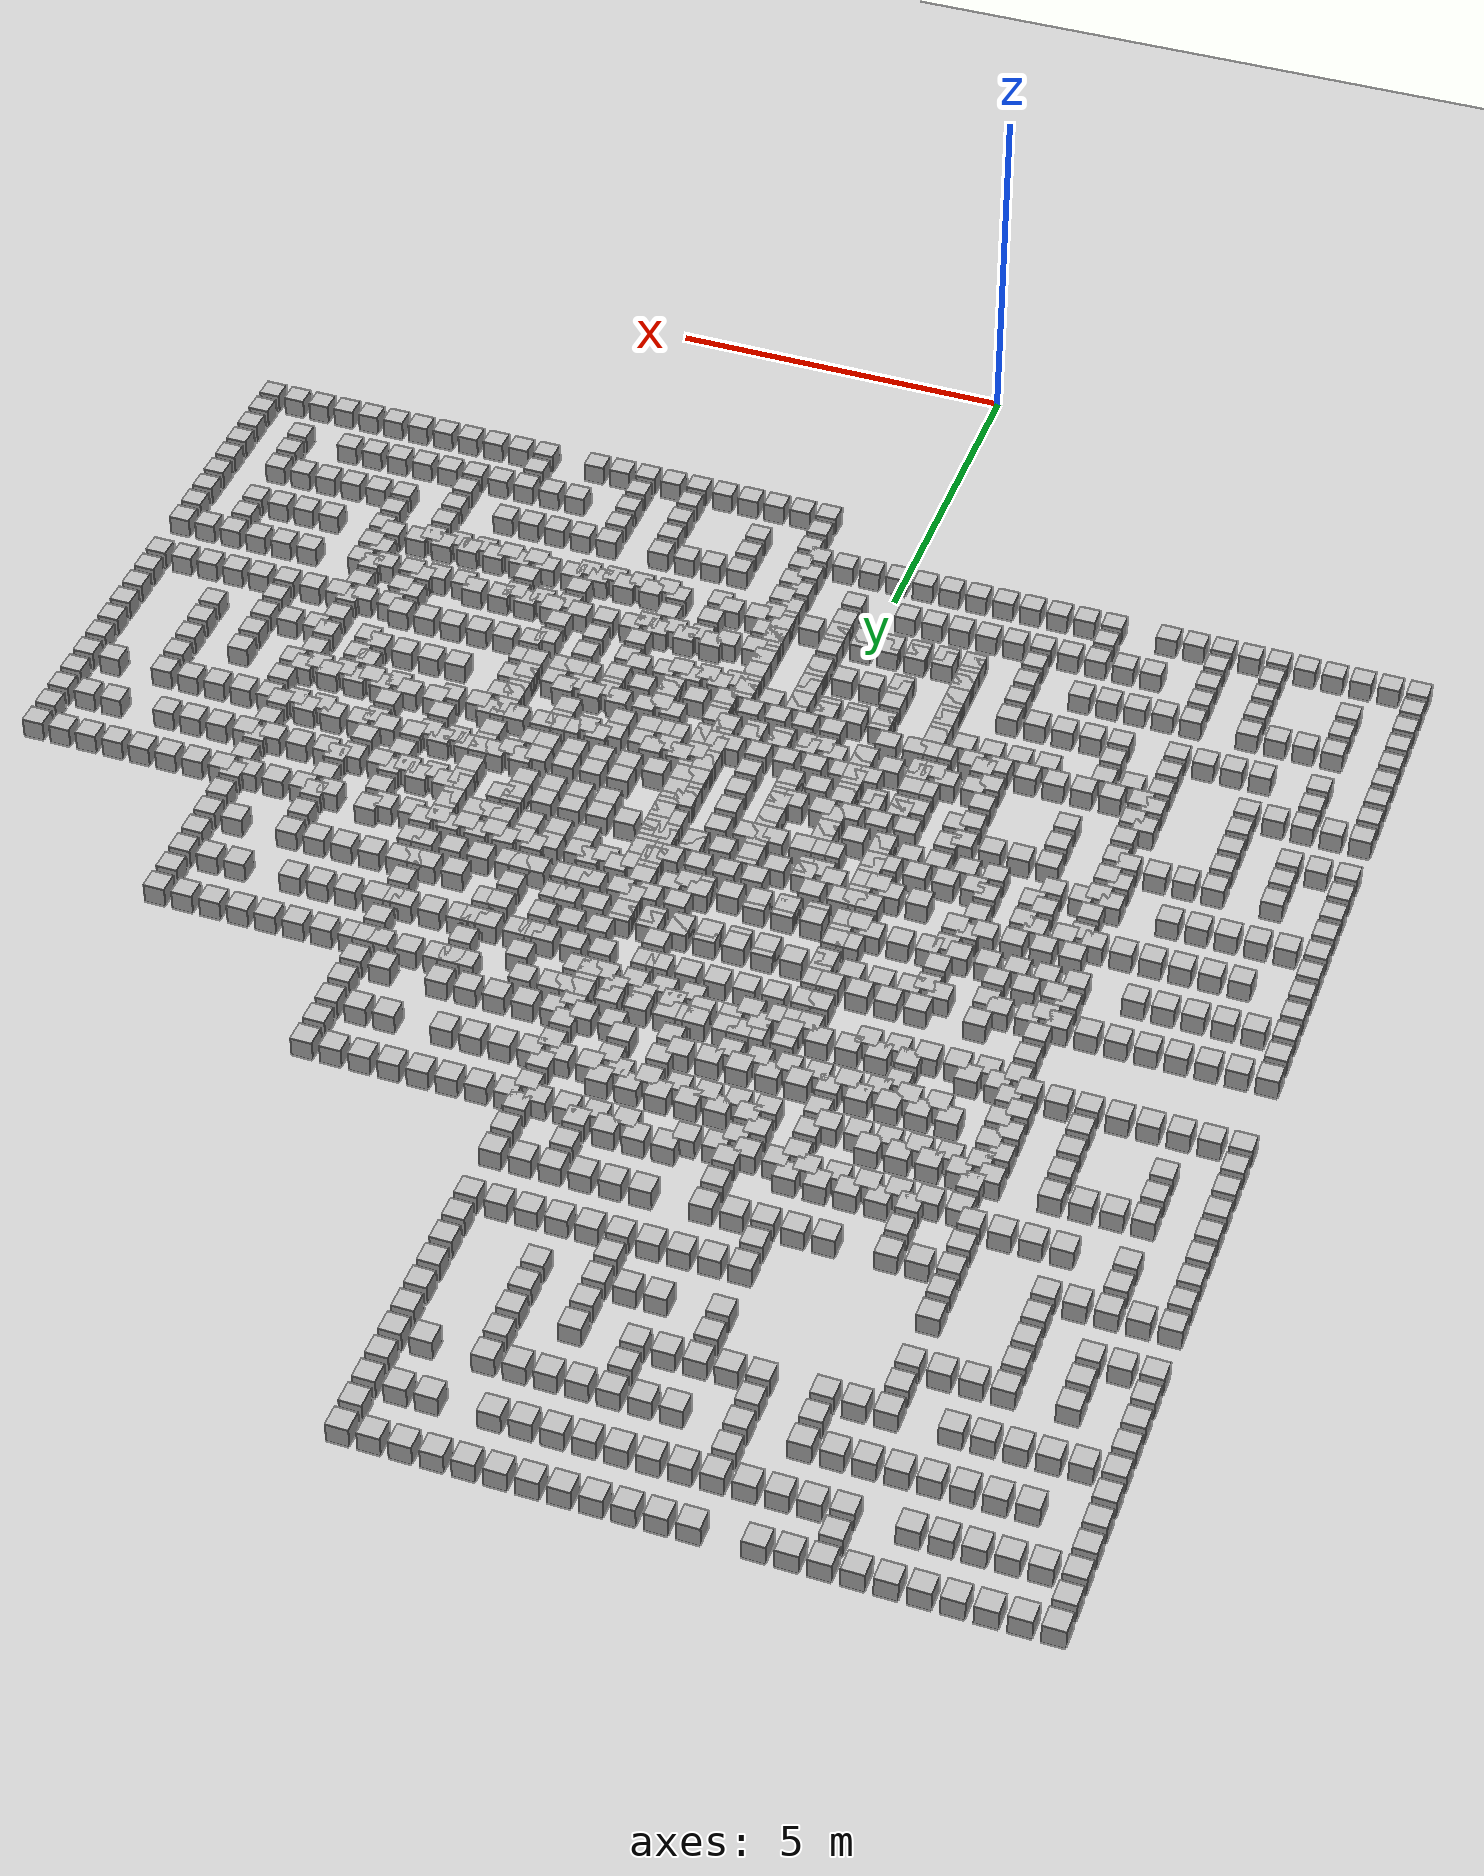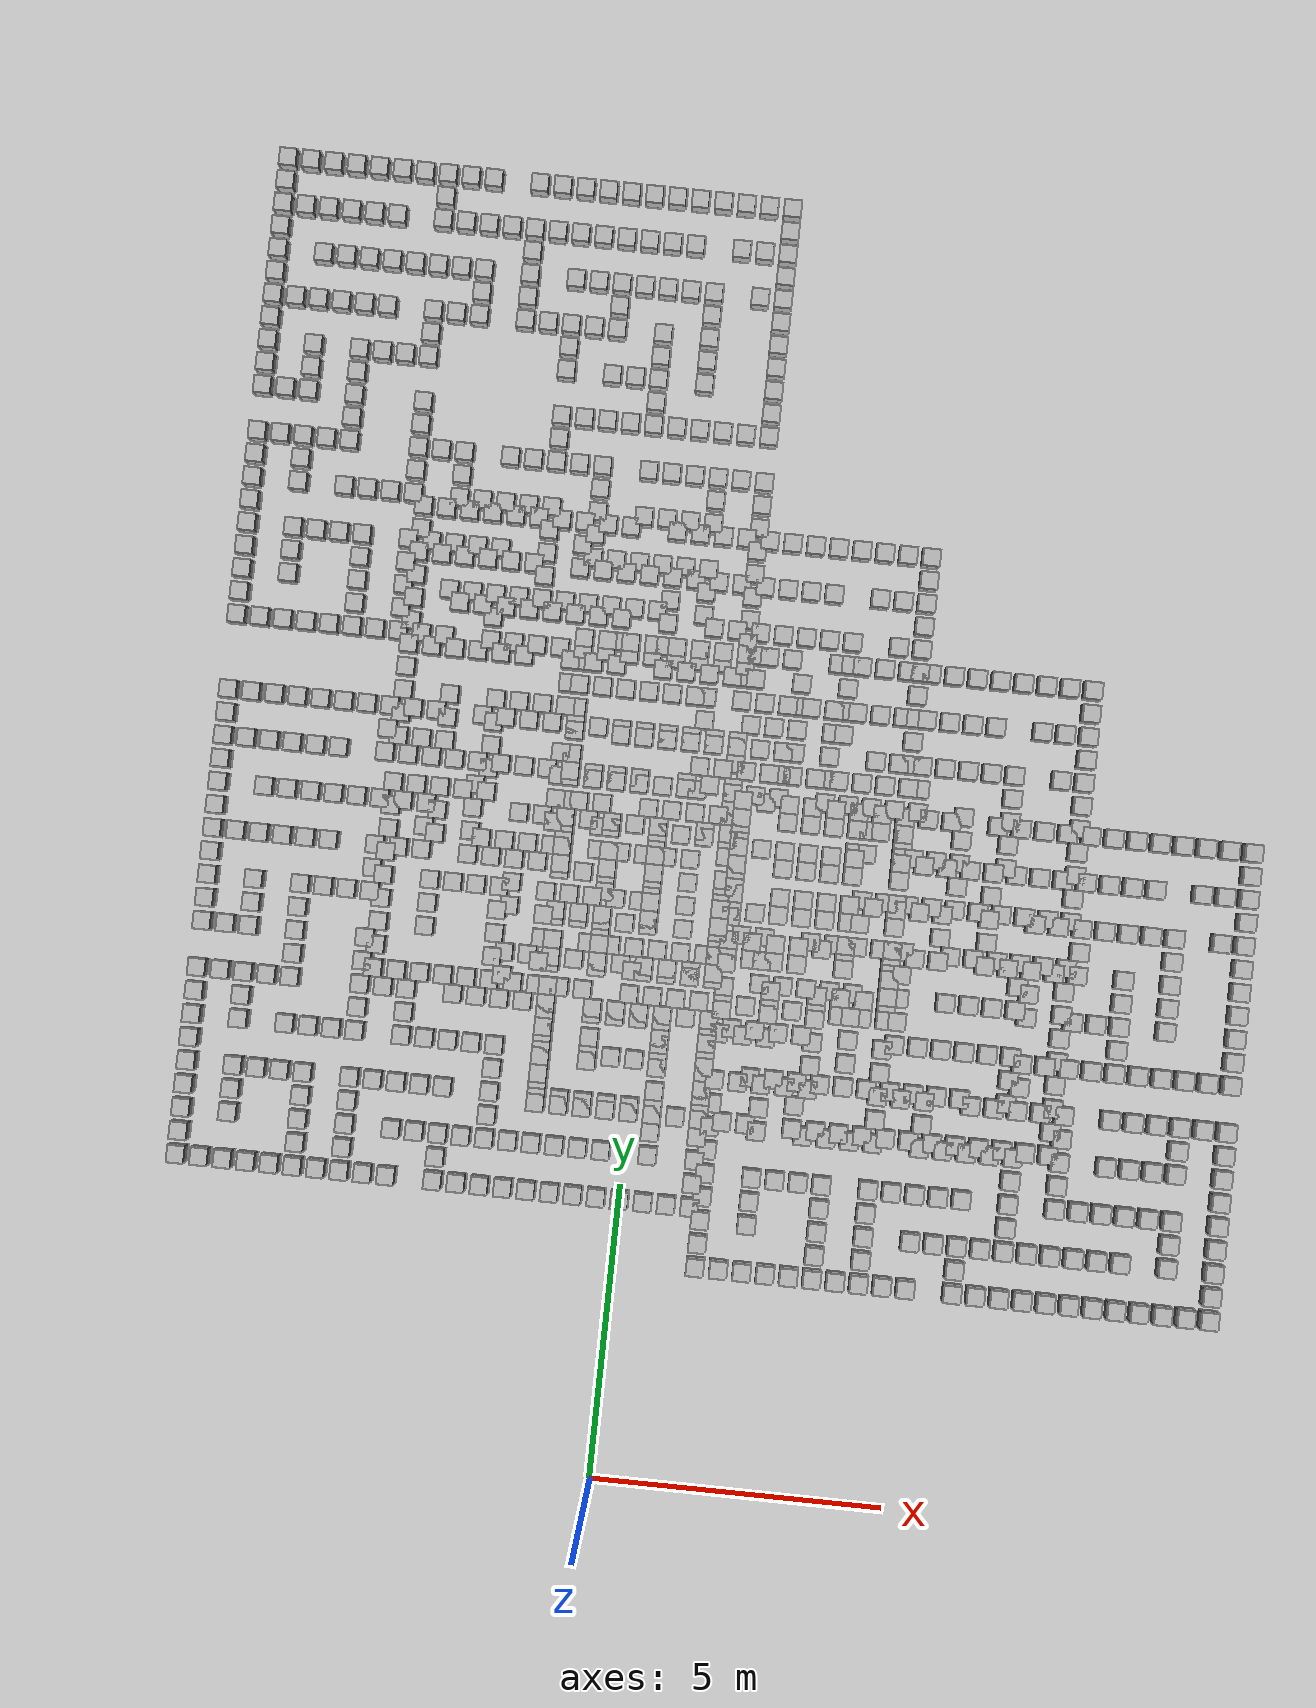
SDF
<?xml version="1.0" ?>
    <sdf version="1.6">
    <world name="default">
        <include>
        <uri>model://ground_plane</uri>
        </include>
        <include>
        <uri>model://sun</uri>
        </include>

        <include>
        <uri>model://cube</uri>
        <name>cube_1</name>
        <pose>-4.6000000000000005 -4.2 0 0 0 0</pose>
        </include>

        <include>
        <uri>model://cube</uri>
        <name>cube_2</name>
        <pose>-4.6000000000000005 -3.8000000000000003 0 0 0 0</pose>
        </include>

        <include>
        <uri>model://cube</uri>
        <name>cube_3</name>
        <pose>-4.6000000000000005 -3.4000000000000004 0 0 0 0</pose>
        </include>

        <include>
        <uri>model://cube</uri>
        <name>cube_4</name>
        <pose>-4.6000000000000005 -3.0 0 0 0 0</pose>
        </include>

        <include>
        <uri>model://cube</uri>
        <name>cube_5</name>
        <pose>-4.6000000000000005 -2.6 0 0 0 0</pose>
        </include>

        <include>
        <uri>model://cube</uri>
        <name>cube_6</name>
        <pose>-4.6000000000000005 -2.2 0 0 0 0</pose>
        </include>

        <include>
        <uri>model://cube</uri>
        <name>cube_7</name>
        <pose>-4.6000000000000005 -1.8 0 0 0 0</pose>
        </include>

        <include>
        <uri>model://cube</uri>
        <name>cube_8</name>
        <pose>-4.6000000000000005 -1.4000000000000001 0 0 0 0</pose>
        </include>

        <include>
        <uri>model://cube</uri>
        <name>cube_9</name>
        <pose>-4.6000000000000005 -1.0 0 0 0 0</pose>
        </include>

        <include>
        <uri>model://cube</uri>
        <name>cube_10</name>
        <pose>-4.6000000000000005 -0.2 0 0 0 0</pose>
        </include>

        <include>
        <uri>model://cube</uri>
        <name>cube_11</name>
        <pose>-4.6000000000000005 0.2 0 0 0 0</pose>
        </include>

        <include>
        <uri>model://cube</uri>
        <name>cube_12</name>
        <pose>-4.6000000000000005 0.6000000000000001 0 0 0 0</pose>
        </include>

        <include>
        <uri>model://cube</uri>
        <name>cube_13</name>
        <pose>-4.6000000000000005 1.0 0 0 0 0</pose>
        </include>

        <include>
        <uri>model://cube</uri>
        <name>cube_14</name>
        <pose>-4.6000000000000005 1.4000000000000001 0 0 0 0</pose>
        </include>

        <include>
        <uri>model://cube</uri>
        <name>cube_15</name>
        <pose>-4.6000000000000005 1.8 0 0 0 0</pose>
        </include>

        <include>
        <uri>model://cube</uri>
        <name>cube_16</name>
        <pose>-4.6000000000000005 2.2 0 0 0 0</pose>
        </include>

        <include>
        <uri>model://cube</uri>
        <name>cube_17</name>
        <pose>-4.6000000000000005 2.6 0 0 0 0</pose>
        </include>

        <include>
        <uri>model://cube</uri>
        <name>cube_18</name>
        <pose>-4.6000000000000005 3.0 0 0 0 0</pose>
        </include>

        <include>
        <uri>model://cube</uri>
        <name>cube_19</name>
        <pose>-4.6000000000000005 3.4000000000000004 0 0 0 0</pose>
        </include>

        <include>
        <uri>model://cube</uri>
        <name>cube_20</name>
        <pose>-4.6000000000000005 3.8000000000000003 0 0 0 0</pose>
        </include>

        <include>
        <uri>model://cube</uri>
        <name>cube_21</name>
        <pose>-4.2 -4.2 0 0 0 0</pose>
        </include>

        <include>
        <uri>model://cube</uri>
        <name>cube_22</name>
        <pose>-4.2 -1.0 0 0 0 0</pose>
        </include>

        <include>
        <uri>model://cube</uri>
        <name>cube_23</name>
        <pose>-4.2 -0.2 0 0 0 0</pose>
        </include>

        <include>
        <uri>model://cube</uri>
        <name>cube_24</name>
        <pose>-4.2 1.4000000000000001 0 0 0 0</pose>
        </include>

        <include>
        <uri>model://cube</uri>
        <name>cube_25</name>
        <pose>-4.2 3.0 0 0 0 0</pose>
        </include>

        <include>
        <uri>model://cube</uri>
        <name>cube_26</name>
        <pose>-4.2 3.8000000000000003 0 0 0 0</pose>
        </include>

        <include>
        <uri>model://cube</uri>
        <name>cube_27</name>
        <pose>-3.8000000000000003 -4.2 0 0 0 0</pose>
        </include>

        <include>
        <uri>model://cube</uri>
        <name>cube_28</name>
        <pose>-3.8000000000000003 -3.4000000000000004 0 0 0 0</pose>
        </include>

        <include>
        <uri>model://cube</uri>
        <name>cube_29</name>
        <pose>-3.8000000000000003 -3.0 0 0 0 0</pose>
        </include>

        <include>
        <uri>model://cube</uri>
        <name>cube_30</name>
        <pose>-3.8000000000000003 -2.6 0 0 0 0</pose>
        </include>

        <include>
        <uri>model://cube</uri>
        <name>cube_31</name>
        <pose>-3.8000000000000003 -1.8 0 0 0 0</pose>
        </include>

        <include>
        <uri>model://cube</uri>
        <name>cube_32</name>
        <pose>-3.8000000000000003 -1.4000000000000001 0 0 0 0</pose>
        </include>

        <include>
        <uri>model://cube</uri>
        <name>cube_33</name>
        <pose>-3.8000000000000003 -1.0 0 0 0 0</pose>
        </include>

        <include>
        <uri>model://cube</uri>
        <name>cube_34</name>
        <pose>-3.8000000000000003 -0.2 0 0 0 0</pose>
        </include>

        <include>
        <uri>model://cube</uri>
        <name>cube_35</name>
        <pose>-3.8000000000000003 0.2 0 0 0 0</pose>
        </include>

        <include>
        <uri>model://cube</uri>
        <name>cube_36</name>
        <pose>-3.8000000000000003 0.6000000000000001 0 0 0 0</pose>
        </include>

        <include>
        <uri>model://cube</uri>
        <name>cube_37</name>
        <pose>-3.8000000000000003 1.4000000000000001 0 0 0 0</pose>
        </include>

        <include>
        <uri>model://cube</uri>
        <name>cube_38</name>
        <pose>-3.8000000000000003 2.2 0 0 0 0</pose>
        </include>

        <include>
        <uri>model://cube</uri>
        <name>cube_39</name>
        <pose>-3.8000000000000003 3.0 0 0 0 0</pose>
        </include>

        <include>
        <uri>model://cube</uri>
        <name>cube_40</name>
        <pose>-3.8000000000000003 3.8000000000000003 0 0 0 0</pose>
        </include>

        <include>
        <uri>model://cube</uri>
        <name>cube_41</name>
        <pose>-3.4000000000000004 -4.2 0 0 0 0</pose>
        </include>

        <include>
        <uri>model://cube</uri>
        <name>cube_42</name>
        <pose>-3.4000000000000004 -2.6 0 0 0 0</pose>
        </include>

        <include>
        <uri>model://cube</uri>
        <name>cube_43</name>
        <pose>-3.4000000000000004 -1.0 0 0 0 0</pose>
        </include>

        <include>
        <uri>model://cube</uri>
        <name>cube_44</name>
        <pose>-3.4000000000000004 1.4000000000000001 0 0 0 0</pose>
        </include>

        <include>
        <uri>model://cube</uri>
        <name>cube_45</name>
        <pose>-3.4000000000000004 2.2 0 0 0 0</pose>
        </include>

        <include>
        <uri>model://cube</uri>
        <name>cube_46</name>
        <pose>-3.4000000000000004 3.0 0 0 0 0</pose>
        </include>

        <include>
        <uri>model://cube</uri>
        <name>cube_47</name>
        <pose>-3.4000000000000004 3.8000000000000003 0 0 0 0</pose>
        </include>

        <include>
        <uri>model://cube</uri>
        <name>cube_48</name>
        <pose>-3.0 -4.2 0 0 0 0</pose>
        </include>

        <include>
        <uri>model://cube</uri>
        <name>cube_49</name>
        <pose>-3.0 -2.6 0 0 0 0</pose>
        </include>

        <include>
        <uri>model://cube</uri>
        <name>cube_50</name>
        <pose>-3.0 -1.8 0 0 0 0</pose>
        </include>

        <include>
        <uri>model://cube</uri>
        <name>cube_51</name>
        <pose>-3.0 -1.0 0 0 0 0</pose>
        </include>

        <include>
        <uri>model://cube</uri>
        <name>cube_52</name>
        <pose>-3.0 -0.6000000000000001 0 0 0 0</pose>
        </include>

        <include>
        <uri>model://cube</uri>
        <name>cube_53</name>
        <pose>-3.0 -0.2 0 0 0 0</pose>
        </include>

        <include>
        <uri>model://cube</uri>
        <name>cube_54</name>
        <pose>-3.0 0.2 0 0 0 0</pose>
        </include>

        <include>
        <uri>model://cube</uri>
        <name>cube_55</name>
        <pose>-3.0 0.6000000000000001 0 0 0 0</pose>
        </include>

        <include>
        <uri>model://cube</uri>
        <name>cube_56</name>
        <pose>-3.0 1.4000000000000001 0 0 0 0</pose>
        </include>

        <include>
        <uri>model://cube</uri>
        <name>cube_57</name>
        <pose>-3.0 2.2 0 0 0 0</pose>
        </include>

        <include>
        <uri>model://cube</uri>
        <name>cube_58</name>
        <pose>-3.0 3.0 0 0 0 0</pose>
        </include>

        <include>
        <uri>model://cube</uri>
        <name>cube_59</name>
        <pose>-3.0 3.8000000000000003 0 0 0 0</pose>
        </include>

        <include>
        <uri>model://cube</uri>
        <name>cube_60</name>
        <pose>-2.6 -4.2 0 0 0 0</pose>
        </include>

        <include>
        <uri>model://cube</uri>
        <name>cube_61</name>
        <pose>-2.6 -3.8000000000000003 0 0 0 0</pose>
        </include>

        <include>
        <uri>model://cube</uri>
        <name>cube_62</name>
        <pose>-2.6 -3.4000000000000004 0 0 0 0</pose>
        </include>

        <include>
        <uri>model://cube</uri>
        <name>cube_63</name>
        <pose>-2.6 -3.0 0 0 0 0</pose>
        </include>

        <include>
        <uri>model://cube</uri>
        <name>cube_64</name>
        <pose>-2.6 -2.6 0 0 0 0</pose>
        </include>

        <include>
        <uri>model://cube</uri>
        <name>cube_65</name>
        <pose>-2.6 -1.8 0 0 0 0</pose>
        </include>

        <include>
        <uri>model://cube</uri>
        <name>cube_66</name>
        <pose>-2.6 0.6000000000000001 0 0 0 0</pose>
        </include>

        <include>
        <uri>model://cube</uri>
        <name>cube_67</name>
        <pose>-2.6 1.4000000000000001 0 0 0 0</pose>
        </include>

        <include>
        <uri>model://cube</uri>
        <name>cube_68</name>
        <pose>-2.6 2.2 0 0 0 0</pose>
        </include>

        <include>
        <uri>model://cube</uri>
        <name>cube_69</name>
        <pose>-2.6 3.0 0 0 0 0</pose>
        </include>

        <include>
        <uri>model://cube</uri>
        <name>cube_70</name>
        <pose>-2.6 3.8000000000000003 0 0 0 0</pose>
        </include>

        <include>
        <uri>model://cube</uri>
        <name>cube_71</name>
        <pose>-2.2 -4.2 0 0 0 0</pose>
        </include>

        <include>
        <uri>model://cube</uri>
        <name>cube_72</name>
        <pose>-2.2 -1.8 0 0 0 0</pose>
        </include>

        <include>
        <uri>model://cube</uri>
        <name>cube_73</name>
        <pose>-2.2 0.6000000000000001 0 0 0 0</pose>
        </include>

        <include>
        <uri>model://cube</uri>
        <name>cube_74</name>
        <pose>-2.2 2.2 0 0 0 0</pose>
        </include>

        <include>
        <uri>model://cube</uri>
        <name>cube_75</name>
        <pose>-2.2 3.8000000000000003 0 0 0 0</pose>
        </include>

        <include>
        <uri>model://cube</uri>
        <name>cube_76</name>
        <pose>-1.8 -4.2 0 0 0 0</pose>
        </include>

        <include>
        <uri>model://cube</uri>
        <name>cube_77</name>
        <pose>-1.8 -3.8000000000000003 0 0 0 0</pose>
        </include>

        <include>
        <uri>model://cube</uri>
        <name>cube_78</name>
        <pose>-1.8 -3.4000000000000004 0 0 0 0</pose>
        </include>

        <include>
        <uri>model://cube</uri>
        <name>cube_79</name>
        <pose>-1.8 -3.0 0 0 0 0</pose>
        </include>

        <include>
        <uri>model://cube</uri>
        <name>cube_80</name>
        <pose>-1.8 -2.6 0 0 0 0</pose>
        </include>

        <include>
        <uri>model://cube</uri>
        <name>cube_81</name>
        <pose>-1.8 -1.8 0 0 0 0</pose>
        </include>

        <include>
        <uri>model://cube</uri>
        <name>cube_82</name>
        <pose>-1.8 -1.4000000000000001 0 0 0 0</pose>
        </include>

        <include>
        <uri>model://cube</uri>
        <name>cube_83</name>
        <pose>-1.8 -1.0 0 0 0 0</pose>
        </include>

        <include>
        <uri>model://cube</uri>
        <name>cube_84</name>
        <pose>-1.8 -0.6000000000000001 0 0 0 0</pose>
        </include>

        <include>
        <uri>model://cube</uri>
        <name>cube_85</name>
        <pose>-1.8 -0.2 0 0 0 0</pose>
        </include>

        <include>
        <uri>model://cube</uri>
        <name>cube_86</name>
        <pose>-1.8 0.6000000000000001 0 0 0 0</pose>
        </include>

        <include>
        <uri>model://cube</uri>
        <name>cube_87</name>
        <pose>-1.8 1.0 0 0 0 0</pose>
        </include>

        <include>
        <uri>model://cube</uri>
        <name>cube_88</name>
        <pose>-1.8 1.4000000000000001 0 0 0 0</pose>
        </include>

        <include>
        <uri>model://cube</uri>
        <name>cube_89</name>
        <pose>-1.8 2.2 0 0 0 0</pose>
        </include>

        <include>
        <uri>model://cube</uri>
        <name>cube_90</name>
        <pose>-1.8 3.0 0 0 0 0</pose>
        </include>

        <include>
        <uri>model://cube</uri>
        <name>cube_91</name>
        <pose>-1.8 3.4000000000000004 0 0 0 0</pose>
        </include>

        <include>
        <uri>model://cube</uri>
        <name>cube_92</name>
        <pose>-1.8 3.8000000000000003 0 0 0 0</pose>
        </include>

        <include>
        <uri>model://cube</uri>
        <name>cube_93</name>
        <pose>-1.4000000000000001 -4.2 0 0 0 0</pose>
        </include>

        <include>
        <uri>model://cube</uri>
        <name>cube_94</name>
        <pose>-1.4000000000000001 -2.6 0 0 0 0</pose>
        </include>

        <include>
        <uri>model://cube</uri>
        <name>cube_95</name>
        <pose>-1.4000000000000001 -1.0 0 0 0 0</pose>
        </include>

        <include>
        <uri>model://cube</uri>
        <name>cube_96</name>
        <pose>-1.4000000000000001 1.4000000000000001 0 0 0 0</pose>
        </include>

        <include>
        <uri>model://cube</uri>
        <name>cube_97</name>
        <pose>-1.4000000000000001 2.2 0 0 0 0</pose>
        </include>

        <include>
        <uri>model://cube</uri>
        <name>cube_98</name>
        <pose>-1.4000000000000001 3.0 0 0 0 0</pose>
        </include>

        <include>
        <uri>model://cube</uri>
        <name>cube_99</name>
        <pose>-1.4000000000000001 3.8000000000000003 0 0 0 0</pose>
        </include>

        <include>
        <uri>model://cube</uri>
        <name>cube_100</name>
        <pose>-1.0 -4.2 0 0 0 0</pose>
        </include>

        <include>
        <uri>model://cube</uri>
        <name>cube_101</name>
        <pose>-1.0 -3.4000000000000004 0 0 0 0</pose>
        </include>

        <include>
        <uri>model://cube</uri>
        <name>cube_102</name>
        <pose>-1.0 -2.6 0 0 0 0</pose>
        </include>

        <include>
        <uri>model://cube</uri>
        <name>cube_103</name>
        <pose>-1.0 -1.8 0 0 0 0</pose>
        </include>

        <include>
        <uri>model://cube</uri>
        <name>cube_104</name>
        <pose>-1.0 -1.4000000000000001 0 0 0 0</pose>
        </include>

        <include>
        <uri>model://cube</uri>
        <name>cube_105</name>
        <pose>-1.0 -1.0 0 0 0 0</pose>
        </include>

        <include>
        <uri>model://cube</uri>
        <name>cube_106</name>
        <pose>-1.0 1.4000000000000001 0 0 0 0</pose>
        </include>

        <include>
        <uri>model://cube</uri>
        <name>cube_107</name>
        <pose>-1.0 1.8 0 0 0 0</pose>
        </include>

        <include>
        <uri>model://cube</uri>
        <name>cube_108</name>
        <pose>-1.0 2.2 0 0 0 0</pose>
        </include>

        <include>
        <uri>model://cube</uri>
        <name>cube_109</name>
        <pose>-1.0 3.0 0 0 0 0</pose>
        </include>

        <include>
        <uri>model://cube</uri>
        <name>cube_110</name>
        <pose>-1.0 3.8000000000000003 0 0 0 0</pose>
        </include>

        <include>
        <uri>model://cube</uri>
        <name>cube_111</name>
        <pose>-0.6000000000000001 -3.4000000000000004 0 0 0 0</pose>
        </include>

        <include>
        <uri>model://cube</uri>
        <name>cube_112</name>
        <pose>-0.6000000000000001 -2.6 0 0 0 0</pose>
        </include>

        <include>
        <uri>model://cube</uri>
        <name>cube_113</name>
        <pose>-0.6000000000000001 -1.8 0 0 0 0</pose>
        </include>

        <include>
        <uri>model://cube</uri>
        <name>cube_114</name>
        <pose>-0.6000000000000001 3.0 0 0 0 0</pose>
        </include>

        <include>
        <uri>model://cube</uri>
        <name>cube_115</name>
        <pose>-0.2 -4.2 0 0 0 0</pose>
        </include>

        <include>
        <uri>model://cube</uri>
        <name>cube_116</name>
        <pose>-0.2 -3.8000000000000003 0 0 0 0</pose>
        </include>

        <include>
        <uri>model://cube</uri>
        <name>cube_117</name>
        <pose>-0.2 -3.4000000000000004 0 0 0 0</pose>
        </include>

        <include>
        <uri>model://cube</uri>
        <name>cube_118</name>
        <pose>-0.2 -2.6 0 0 0 0</pose>
        </include>

        <include>
        <uri>model://cube</uri>
        <name>cube_119</name>
        <pose>-0.2 -1.8 0 0 0 0</pose>
        </include>

        <include>
        <uri>model://cube</uri>
        <name>cube_120</name>
        <pose>-0.2 -1.0 0 0 0 0</pose>
        </include>

        <include>
        <uri>model://cube</uri>
        <name>cube_121</name>
        <pose>-0.2 1.4000000000000001 0 0 0 0</pose>
        </include>

        <include>
        <uri>model://cube</uri>
        <name>cube_122</name>
        <pose>-0.2 1.8 0 0 0 0</pose>
        </include>

        <include>
        <uri>model://cube</uri>
        <name>cube_123</name>
        <pose>-0.2 2.2 0 0 0 0</pose>
        </include>

        <include>
        <uri>model://cube</uri>
        <name>cube_124</name>
        <pose>-0.2 2.6 0 0 0 0</pose>
        </include>

        <include>
        <uri>model://cube</uri>
        <name>cube_125</name>
        <pose>-0.2 3.0 0 0 0 0</pose>
        </include>

        <include>
        <uri>model://cube</uri>
        <name>cube_126</name>
        <pose>-0.2 3.8000000000000003 0 0 0 0</pose>
        </include>

        <include>
        <uri>model://cube</uri>
        <name>cube_127</name>
        <pose>0.2 -4.2 0 0 0 0</pose>
        </include>

        <include>
        <uri>model://cube</uri>
        <name>cube_128</name>
        <pose>0.2 -3.4000000000000004 0 0 0 0</pose>
        </include>

        <include>
        <uri>model://cube</uri>
        <name>cube_129</name>
        <pose>0.2 -1.8 0 0 0 0</pose>
        </include>

        <include>
        <uri>model://cube</uri>
        <name>cube_130</name>
        <pose>0.2 -1.0 0 0 0 0</pose>
        </include>

        <include>
        <uri>model://cube</uri>
        <name>cube_131</name>
        <pose>0.2 1.4000000000000001 0 0 0 0</pose>
        </include>

        <include>
        <uri>model://cube</uri>
        <name>cube_132</name>
        <pose>0.2 3.0 0 0 0 0</pose>
        </include>

        <include>
        <uri>model://cube</uri>
        <name>cube_133</name>
        <pose>0.2 3.8000000000000003 0 0 0 0</pose>
        </include>

        <include>
        <uri>model://cube</uri>
        <name>cube_134</name>
        <pose>0.6000000000000001 -4.2 0 0 0 0</pose>
        </include>

        <include>
        <uri>model://cube</uri>
        <name>cube_135</name>
        <pose>0.6000000000000001 -3.4000000000000004 0 0 0 0</pose>
        </include>

        <include>
        <uri>model://cube</uri>
        <name>cube_136</name>
        <pose>0.6000000000000001 -3.0 0 0 0 0</pose>
        </include>

        <include>
        <uri>model://cube</uri>
        <name>cube_137</name>
        <pose>0.6000000000000001 -2.6 0 0 0 0</pose>
        </include>

        <include>
        <uri>model://cube</uri>
        <name>cube_138</name>
        <pose>0.6000000000000001 -2.2 0 0 0 0</pose>
        </include>

        <include>
        <uri>model://cube</uri>
        <name>cube_139</name>
        <pose>0.6000000000000001 -1.8 0 0 0 0</pose>
        </include>

        <include>
        <uri>model://cube</uri>
        <name>cube_140</name>
        <pose>0.6000000000000001 -1.0 0 0 0 0</pose>
        </include>

        <include>
        <uri>model://cube</uri>
        <name>cube_141</name>
        <pose>0.6000000000000001 -0.6000000000000001 0 0 0 0</pose>
        </include>

        <include>
        <uri>model://cube</uri>
        <name>cube_142</name>
        <pose>0.6000000000000001 -0.2 0 0 0 0</pose>
        </include>

        <include>
        <uri>model://cube</uri>
        <name>cube_143</name>
        <pose>0.6000000000000001 0.6000000000000001 0 0 0 0</pose>
        </include>

        <include>
        <uri>model://cube</uri>
        <name>cube_144</name>
        <pose>0.6000000000000001 1.0 0 0 0 0</pose>
        </include>

        <include>
        <uri>model://cube</uri>
        <name>cube_145</name>
        <pose>0.6000000000000001 1.4000000000000001 0 0 0 0</pose>
        </include>

        <include>
        <uri>model://cube</uri>
        <name>cube_146</name>
        <pose>0.6000000000000001 2.2 0 0 0 0</pose>
        </include>

        <include>
        <uri>model://cube</uri>
        <name>cube_147</name>
        <pose>0.6000000000000001 3.0 0 0 0 0</pose>
        </include>

        <include>
        <uri>model://cube</uri>
        <name>cube_148</name>
        <pose>0.6000000000000001 3.8000000000000003 0 0 0 0</pose>
        </include>

        <include>
        <uri>model://cube</uri>
        <name>cube_149</name>
        <pose>1.0 -4.2 0 0 0 0</pose>
        </include>

        <include>
        <uri>model://cube</uri>
        <name>cube_150</name>
        <pose>1.0 -3.4000000000000004 0 0 0 0</pose>
        </include>

        <include>
        <uri>model://cube</uri>
        <name>cube_151</name>
        <pose>1.0 -1.0 0 0 0 0</pose>
        </include>

        <include>
        <uri>model://cube</uri>
        <name>cube_152</name>
        <pose>1.0 -0.2 0 0 0 0</pose>
        </include>

        <include>
        <uri>model://cube</uri>
        <name>cube_153</name>
        <pose>1.0 1.4000000000000001 0 0 0 0</pose>
        </include>

        <include>
        <uri>model://cube</uri>
        <name>cube_154</name>
        <pose>1.0 2.2 0 0 0 0</pose>
        </include>

        <include>
        <uri>model://cube</uri>
        <name>cube_155</name>
        <pose>1.0 3.0 0 0 0 0</pose>
        </include>

        <include>
        <uri>model://cube</uri>
        <name>cube_156</name>
        <pose>1.0 3.8000000000000003 0 0 0 0</pose>
        </include>

        <include>
        <uri>model://cube</uri>
        <name>cube_157</name>
        <pose>1.4000000000000001 -4.2 0 0 0 0</pose>
        </include>

        <include>
        <uri>model://cube</uri>
        <name>cube_158</name>
        <pose>1.4000000000000001 -3.4000000000000004 0 0 0 0</pose>
        </include>

        <include>
        <uri>model://cube</uri>
        <name>cube_159</name>
        <pose>1.4000000000000001 -2.6 0 0 0 0</pose>
        </include>

        <include>
        <uri>model://cube</uri>
        <name>cube_160</name>
        <pose>1.4000000000000001 -2.2 0 0 0 0</pose>
        </include>

        <include>
        <uri>model://cube</uri>
        <name>cube_161</name>
        <pose>1.4000000000000001 -1.8 0 0 0 0</pose>
        </include>

        <include>
        <uri>model://cube</uri>
        <name>cube_162</name>
        <pose>1.4000000000000001 -1.4000000000000001 0 0 0 0</pose>
        </include>

        <include>
        <uri>model://cube</uri>
        <name>cube_163</name>
        <pose>1.4000000000000001 -1.0 0 0 0 0</pose>
        </include>

        <include>
        <uri>model://cube</uri>
        <name>cube_164</name>
        <pose>1.4000000000000001 -0.2 0 0 0 0</pose>
        </include>

        <include>
        <uri>model://cube</uri>
        <name>cube_165</name>
        <pose>1.4000000000000001 0.6000000000000001 0 0 0 0</pose>
        </include>

        <include>
        <uri>model://cube</uri>
        <name>cube_166</name>
        <pose>1.4000000000000001 1.4000000000000001 0 0 0 0</pose>
        </include>

        <include>
        <uri>model://cube</uri>
        <name>cube_167</name>
        <pose>1.4000000000000001 1.8 0 0 0 0</pose>
        </include>

        <include>
        <uri>model://cube</uri>
        <name>cube_168</name>
        <pose>1.4000000000000001 2.2 0 0 0 0</pose>
        </include>

        <include>
        <uri>model://cube</uri>
        <name>cube_169</name>
        <pose>1.4000000000000001 3.0 0 0 0 0</pose>
        </include>

        <include>
        <uri>model://cube</uri>
        <name>cube_170</name>
        <pose>1.4000000000000001 3.8000000000000003 0 0 0 0</pose>
        </include>

        <include>
        <uri>model://cube</uri>
        <name>cube_171</name>
        <pose>1.8 -4.2 0 0 0 0</pose>
        </include>

        <include>
        <uri>model://cube</uri>
        <name>cube_172</name>
        <pose>1.8 -3.4000000000000004 0 0 0 0</pose>
        </include>

        <include>
        <uri>model://cube</uri>
        <name>cube_173</name>
        <pose>1.8 -2.6 0 0 0 0</pose>
        </include>

        <include>
        <uri>model://cube</uri>
        <name>cube_174</name>
        <pose>1.8 -0.2 0 0 0 0</pose>
        </include>

        <include>
        <uri>model://cube</uri>
        <name>cube_175</name>
        <pose>1.8 0.6000000000000001 0 0 0 0</pose>
        </include>

        <include>
        <uri>model://cube</uri>
        <name>cube_176</name>
        <pose>1.8 2.2 0 0 0 0</pose>
        </include>

        <include>
        <uri>model://cube</uri>
        <name>cube_177</name>
        <pose>1.8 3.0 0 0 0 0</pose>
        </include>

        <include>
        <uri>model://cube</uri>
        <name>cube_178</name>
        <pose>1.8 3.8000000000000003 0 0 0 0</pose>
        </include>

        <include>
        <uri>model://cube</uri>
        <name>cube_179</name>
        <pose>2.2 -4.2 0 0 0 0</pose>
        </include>

        <include>
        <uri>model://cube</uri>
        <name>cube_180</name>
        <pose>2.2 -3.4000000000000004 0 0 0 0</pose>
        </include>

        <include>
        <uri>model://cube</uri>
        <name>cube_181</name>
        <pose>2.2 -2.6 0 0 0 0</pose>
        </include>

        <include>
        <uri>model://cube</uri>
        <name>cube_182</name>
        <pose>2.2 -1.8 0 0 0 0</pose>
        </include>

        <include>
        <uri>model://cube</uri>
        <name>cube_183</name>
        <pose>2.2 -1.0 0 0 0 0</pose>
        </include>

        <include>
        <uri>model://cube</uri>
        <name>cube_184</name>
        <pose>2.2 -0.2 0 0 0 0</pose>
        </include>

        <include>
        <uri>model://cube</uri>
        <name>cube_185</name>
        <pose>2.2 0.2 0 0 0 0</pose>
        </include>

        <include>
        <uri>model://cube</uri>
        <name>cube_186</name>
        <pose>2.2 0.6000000000000001 0 0 0 0</pose>
        </include>

        <include>
        <uri>model://cube</uri>
        <name>cube_187</name>
        <pose>2.2 1.0 0 0 0 0</pose>
        </include>

        <include>
        <uri>model://cube</uri>
        <name>cube_188</name>
        <pose>2.2 1.4000000000000001 0 0 0 0</pose>
        </include>

        <include>
        <uri>model://cube</uri>
        <name>cube_189</name>
        <pose>2.2 2.2 0 0 0 0</pose>
        </include>

        <include>
        <uri>model://cube</uri>
        <name>cube_190</name>
        <pose>2.2 3.0 0 0 0 0</pose>
        </include>

        <include>
        <uri>model://cube</uri>
        <name>cube_191</name>
        <pose>2.2 3.8000000000000003 0 0 0 0</pose>
        </include>

        <include>
        <uri>model://cube</uri>
        <name>cube_192</name>
        <pose>2.6 -4.2 0 0 0 0</pose>
        </include>

        <include>
        <uri>model://cube</uri>
        <name>cube_193</name>
        <pose>2.6 -3.4000000000000004 0 0 0 0</pose>
        </include>

        <include>
        <uri>model://cube</uri>
        <name>cube_194</name>
        <pose>2.6 -2.6 0 0 0 0</pose>
        </include>

        <include>
        <uri>model://cube</uri>
        <name>cube_195</name>
        <pose>2.6 -1.8 0 0 0 0</pose>
        </include>

        <include>
        <uri>model://cube</uri>
        <name>cube_196</name>
        <pose>2.6 -1.0 0 0 0 0</pose>
        </include>

        <include>
        <uri>model://cube</uri>
        <name>cube_197</name>
        <pose>2.6 -0.2 0 0 0 0</pose>
        </include>

        <include>
        <uri>model://cube</uri>
        <name>cube_198</name>
        <pose>2.6 2.2 0 0 0 0</pose>
        </include>

        <include>
        <uri>model://cube</uri>
        <name>cube_199</name>
        <pose>2.6 3.0 0 0 0 0</pose>
        </include>

        <include>
        <uri>model://cube</uri>
        <name>cube_200</name>
        <pose>2.6 3.8000000000000003 0 0 0 0</pose>
        </include>

        <include>
        <uri>model://cube</uri>
        <name>cube_201</name>
        <pose>3.0 -4.2 0 0 0 0</pose>
        </include>

        <include>
        <uri>model://cube</uri>
        <name>cube_202</name>
        <pose>3.0 -2.6 0 0 0 0</pose>
        </include>

        <include>
        <uri>model://cube</uri>
        <name>cube_203</name>
        <pose>3.0 -1.8 0 0 0 0</pose>
        </include>

        <include>
        <uri>model://cube</uri>
        <name>cube_204</name>
        <pose>3.0 -1.0 0 0 0 0</pose>
        </include>

        <include>
        <uri>model://cube</uri>
        <name>cube_205</name>
        <pose>3.0 -0.2 0 0 0 0</pose>
        </include>

        <include>
        <uri>model://cube</uri>
        <name>cube_206</name>
        <pose>3.0 0.6000000000000001 0 0 0 0</pose>
        </include>

        <include>
        <uri>model://cube</uri>
        <name>cube_207</name>
        <pose>3.0 1.0 0 0 0 0</pose>
        </include>

        <include>
        <uri>model://cube</uri>
        <name>cube_208</name>
        <pose>3.0 1.4000000000000001 0 0 0 0</pose>
        </include>

        <include>
        <uri>model://cube</uri>
        <name>cube_209</name>
        <pose>3.0 1.8 0 0 0 0</pose>
        </include>

        <include>
        <uri>model://cube</uri>
        <name>cube_210</name>
        <pose>3.0 2.2 0 0 0 0</pose>
        </include>

        <include>
        <uri>model://cube</uri>
        <name>cube_211</name>
        <pose>3.0 3.8000000000000003 0 0 0 0</pose>
        </include>

        <include>
        <uri>model://cube</uri>
        <name>cube_212</name>
        <pose>3.4000000000000004 -4.2 0 0 0 0</pose>
        </include>

        <include>
        <uri>model://cube</uri>
        <name>cube_213</name>
        <pose>3.4000000000000004 -3.4000000000000004 0 0 0 0</pose>
        </include>

        <include>
        <uri>model://cube</uri>
        <name>cube_214</name>
        <pose>3.4000000000000004 -3.0 0 0 0 0</pose>
        </include>

        <include>
        <uri>model://cube</uri>
        <name>cube_215</name>
        <pose>3.4000000000000004 -2.6 0 0 0 0</pose>
        </include>

        <include>
        <uri>model://cube</uri>
        <name>cube_216</name>
        <pose>3.4000000000000004 -1.8 0 0 0 0</pose>
        </include>

        <include>
        <uri>model://cube</uri>
        <name>cube_217</name>
        <pose>3.4000000000000004 -1.4000000000000001 0 0 0 0</pose>
        </include>

        <include>
        <uri>model://cube</uri>
        <name>cube_218</name>
        <pose>3.4000000000000004 -1.0 0 0 0 0</pose>
        </include>

        <include>
        <uri>model://cube</uri>
        <name>cube_219</name>
        <pose>3.4000000000000004 -0.2 0 0 0 0</pose>
        </include>

        <include>
        <uri>model://cube</uri>
        <name>cube_220</name>
        <pose>3.4000000000000004 3.0 0 0 0 0</pose>
        </include>

        <include>
        <uri>model://cube</uri>
        <name>cube_221</name>
        <pose>3.4000000000000004 3.8000000000000003 0 0 0 0</pose>
        </include>

        <include>
        <uri>model://cube</uri>
        <name>cube_222</name>
        <pose>3.8000000000000003 -4.2 0 0 0 0</pose>
        </include>

        <include>
        <uri>model://cube</uri>
        <name>cube_223</name>
        <pose>3.8000000000000003 -1.0 0 0 0 0</pose>
        </include>

        <include>
        <uri>model://cube</uri>
        <name>cube_224</name>
        <pose>3.8000000000000003 -0.2 0 0 0 0</pose>
        </include>

        <include>
        <uri>model://cube</uri>
        <name>cube_225</name>
        <pose>3.8000000000000003 2.2 0 0 0 0</pose>
        </include>

        <include>
        <uri>model://cube</uri>
        <name>cube_226</name>
        <pose>3.8000000000000003 3.0 0 0 0 0</pose>
        </include>

        <include>
        <uri>model://cube</uri>
        <name>cube_227</name>
        <pose>3.8000000000000003 3.8000000000000003 0 0 0 0</pose>
        </include>

        <include>
        <uri>model://cube</uri>
        <name>cube_228</name>
        <pose>4.2 -4.2 0 0 0 0</pose>
        </include>

        <include>
        <uri>model://cube</uri>
        <name>cube_229</name>
        <pose>4.2 -3.8000000000000003 0 0 0 0</pose>
        </include>

        <include>
        <uri>model://cube</uri>
        <name>cube_230</name>
        <pose>4.2 -3.4000000000000004 0 0 0 0</pose>
        </include>

        <include>
        <uri>model://cube</uri>
        <name>cube_231</name>
        <pose>4.2 -3.0 0 0 0 0</pose>
        </include>

        <include>
        <uri>model://cube</uri>
        <name>cube_232</name>
        <pose>4.2 -2.6 0 0 0 0</pose>
        </include>

        <include>
        <uri>model://cube</uri>
        <name>cube_233</name>
        <pose>4.2 -2.2 0 0 0 0</pose>
        </include>

        <include>
        <uri>model://cube</uri>
        <name>cube_234</name>
        <pose>4.2 -1.8 0 0 0 0</pose>
        </include>

        <include>
        <uri>model://cube</uri>
        <name>cube_235</name>
        <pose>4.2 -1.4000000000000001 0 0 0 0</pose>
        </include>

        <include>
        <uri>model://cube</uri>
        <name>cube_236</name>
        <pose>4.2 -1.0 0 0 0 0</pose>
        </include>

        <include>
        <uri>model://cube</uri>
        <name>cube_237</name>
        <pose>4.2 -0.2 0 0 0 0</pose>
        </include>

        <include>
        <uri>model://cube</uri>
        <name>cube_238</name>
        <pose>4.2 0.2 0 0 0 0</pose>
        </include>

        <include>
        <uri>model://cube</uri>
        <name>cube_239</name>
        <pose>4.2 0.6000000000000001 0 0 0 0</pose>
        </include>

        <include>
        <uri>model://cube</uri>
        <name>cube_240</name>
        <pose>4.2 1.0 0 0 0 0</pose>
        </include>

        <include>
        <uri>model://cube</uri>
        <name>cube_241</name>
        <pose>4.2 1.4000000000000001 0 0 0 0</pose>
        </include>

        <include>
        <uri>model://cube</uri>
        <name>cube_242</name>
        <pose>4.2 1.8 0 0 0 0</pose>
        </include>

        <include>
        <uri>model://cube</uri>
        <name>cube_243</name>
        <pose>4.2 2.2 0 0 0 0</pose>
        </include>

        <include>
        <uri>model://cube</uri>
        <name>cube_244</name>
        <pose>4.2 2.6 0 0 0 0</pose>
        </include>

        <include>
        <uri>model://cube</uri>
        <name>cube_245</name>
        <pose>4.2 3.0 0 0 0 0</pose>
        </include>

        <include>
        <uri>model://cube</uri>
        <name>cube_246</name>
        <pose>4.2 3.4000000000000004 0 0 0 0</pose>
        </include>

        <include>
        <uri>model://cube</uri>
        <name>cube_247</name>
        <pose>4.2 3.8000000000000003 0 0 0 0</pose>
        </include>

    </world>
    </sdf>

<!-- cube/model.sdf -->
<sdf version="1.5">
    <model name="cube">
        <static>true</static>
        <link name="link">
            <collision name="collision1">
                <pose>0 12.5 0.1 0 0 0</pose>
                <geometry>
                    <mesh>
                        <uri>model://cube/meshes/cube.dae</uri>
                    </mesh>
                </geometry>
            </collision>
            <visual name="visual1">

              <pose>0 12.5 0.1 0 0 0</pose>
              <geometry>
              <mesh>
                 <uri>model://cube/meshes/cube.dae</uri>
              </mesh>
              </geometry>

              <material>
                  <script>
                      <uri>model://cube/materials/scripts</uri>
                      <uri>model://cube/materials/textures</uri>
                      <name>cubeMat/Diffuse</name>
                  </script>
              </material>
             </visual>

             <collision name="collision2">
                <pose>3 10.5 0.1 0 0 0</pose>
                <geometry>
                    <mesh>
                        <uri>model://cube/meshes/cube.dae</uri>
                    </mesh>
                </geometry>
            </collision>
            <visual name="visual2">

              <pose>3 10.5 0.1 0 0 0</pose>
              <geometry>
              <mesh>
                 <uri>model://cube/meshes/cube.dae</uri>
              </mesh>
              </geometry>

              <material>
                  <script>
                      <uri>model://cube/materials/scripts</uri>
                      <uri>model://cube/materials/textures</uri>
                      <name>cubeMat/Diffuse</name>
                  </script>
              </material>
             </visual>

             <collision name="collision3">
                <pose>-3 9 0.1 0 0 0</pose>
                <geometry>
                    <mesh>
                        <uri>model://cube/meshes/cube.dae</uri>
                    </mesh>
                </geometry>
            </collision>
            <visual name="visual3">

              <pose>-3 9 0.1 0 0 0</pose>
              <geometry>
              <mesh>
                 <uri>model://cube/meshes/cube.dae</uri>
              </mesh>
              </geometry>

              <material>
                  <script>
                      <uri>model://cube/materials/scripts</uri>
                      <uri>model://cube/materials/textures</uri>
                      <name>cubeMat/Diffuse</name>
                  </script>
              </material>
             </visual>

             <collision name="collision4">
                <pose>6 8 0.1 0 0 0</pose>
                <geometry>
                    <mesh>
                        <uri>model://cube/meshes/cube.dae</uri>
                    </mesh>
                </geometry>
            </collision>
            <visual name="visual4">

              <pose>6 8 0.1 0 0 0</pose>
              <geometry>
              <mesh>
                 <uri>model://cube/meshes/cube.dae</uri>
              </mesh>
              </geometry>

              <material>
                  <script>
                      <uri>model://cube/materials/scripts</uri>
                      <uri>model://cube/materials/textures</uri>
                      <name>cubeMat/Diffuse</name>
                  </script>
              </material>
             </visual>

             <collision name="collision5">
                <pose>-3 18.3 0.1 0 0 0</pose>
                <geometry>
                    <mesh>
                        <uri>model://cube/meshes/cube.dae</uri>
                    </mesh>
                </geometry>
            </collision>
            <visual name="visual5">

              <pose>-3 18.3 0.1 0 0 0</pose>
              <geometry>
              <mesh>
                 <uri>model://cube/meshes/cube.dae</uri>
              </mesh>
              </geometry>

              <material>
                  <script>
                      <uri>model://cube/materials/scripts</uri>
                      <uri>model://cube/materials/textures</uri>
                      <name>cubeMat/Diffuse</name>
                  </script>
              </material>
             </visual>
        </link>
    </model>
</sdf>
